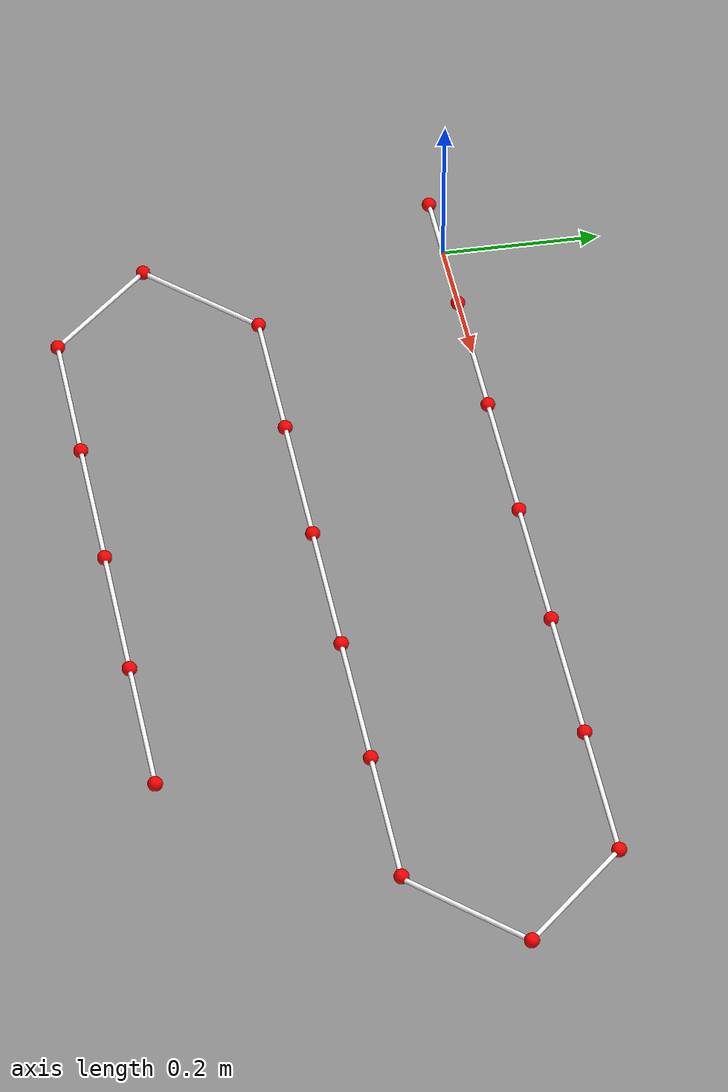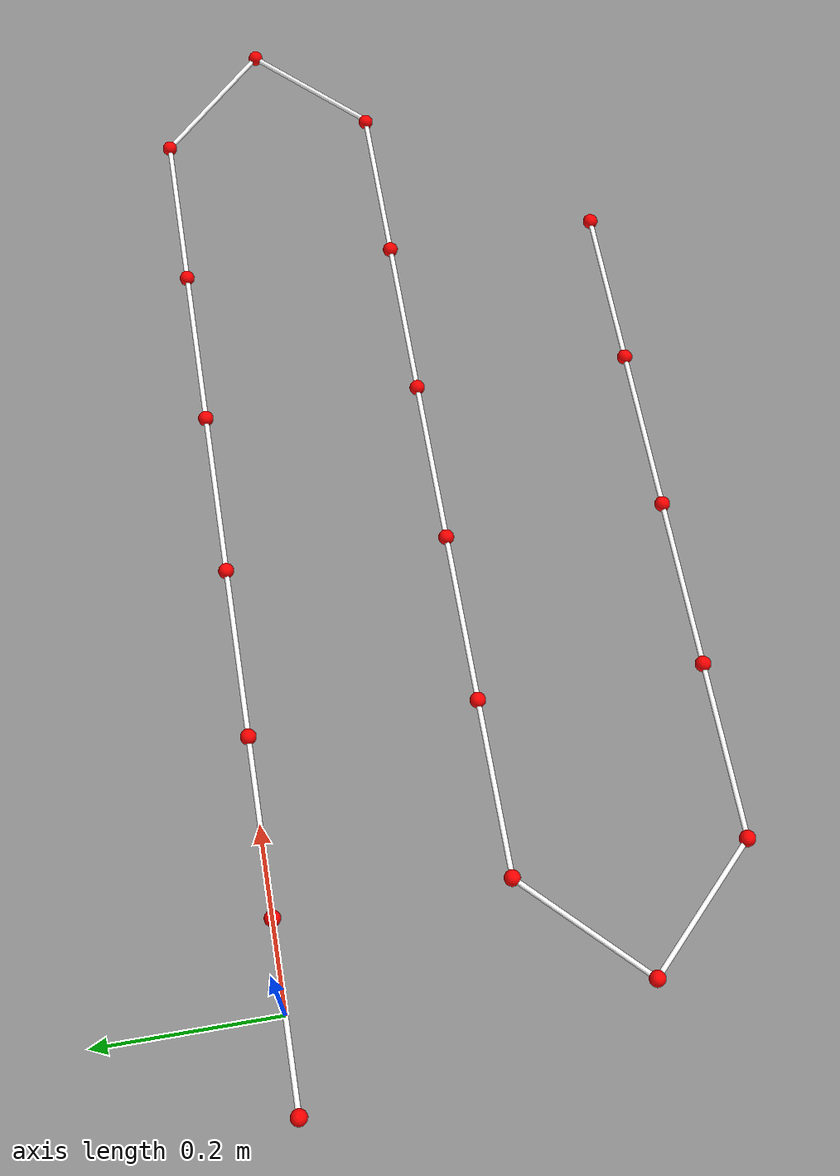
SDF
<?xml version="1.0"?>
<!--
  Tether dimension and mass based on 6mm dyneema rope
  - radius: 0.003 m
  - mass per metre: 0.026 kg

-->
<sdf version="1.9">
  <model name="tether">
    <link name="link_00">
      <gravity>true</gravity>
      <pose>-0.1 0 0 0 0 0</pose>
      <inertial>
        <mass>0.0052</mass>
        <pose>0.1 0 0 0 0 0</pose>
        <inertia>
          <ixx>2.34E-08</ixx>
          <ixy>0</ixy>
          <ixz>0</ixz>
          <iyy>1.7345E-05</iyy>
          <iyz>0</iyz>
          <izz>1.7345E-05</izz>
        </inertia>
      </inertial>
      <visual name="visual">
        <pose>0.1 0 0 0 1.570790 0</pose>
        <geometry>
          <cylinder>
            <length>0.2</length>
            <radius>0.003</radius>
          </cylinder>
        </geometry>
        <material>
          <ambient>1 1 1</ambient>
          <diffuse>1 1 1</diffuse>
          <specular>0.01 0.01 0.01 1.0</specular>
        </material>
      </visual>
      <visual name="sphere">
        <geometry>
          <sphere>
            <radius>0.009</radius>
          </sphere>
        </geometry>
        <material>
          <ambient>1 0 0</ambient>
          <diffuse>1 0 0</diffuse>
          <specular>0.01 0.01 0.01 1.0</specular>
        </material>
      </visual>
    </link>
    <link name="link_01">
      <gravity>true</gravity>
      <pose>0.1 0 0 0 0 0</pose>
      <inertial>
        <mass>0.0052</mass>
        <pose>0.1 0 0 0 0 0</pose>
        <inertia>
          <ixx>2.34E-08</ixx>
          <ixy>0</ixy>
          <ixz>0</ixz>
          <iyy>1.7345E-05</iyy>
          <iyz>0</iyz>
          <izz>1.7345E-05</izz>
        </inertia>
      </inertial>
      <collision name="collision">
        <pose>0.1 0 0 0 1.570790 0</pose>
        <geometry>
          <cylinder>
            <length>0.2</length>
            <radius>0.003</radius>
          </cylinder>
        </geometry>
      </collision>
      <visual name="visual">
        <pose>0.1 0 0 0 1.570790 0</pose>
        <geometry>
          <cylinder>
            <length>0.2</length>
            <radius>0.003</radius>
          </cylinder>
        </geometry>
        <material>
          <ambient>1 1 1</ambient>
          <diffuse>1 1 1</diffuse>
          <specular>0.01 0.01 0.01 1.0</specular>
        </material>
      </visual>
      <visual name="sphere">
        <geometry>
          <sphere>
            <radius>0.009</radius>
          </sphere>
        </geometry>
        <material>
          <ambient>1 0 0</ambient>
          <diffuse>1 0 0</diffuse>
          <specular>0.01 0.01 0.01 1.0</specular>
        </material>
      </visual>
    </link>
    <link name="link_02">
      <gravity>true</gravity>
      <pose>0.3 0 0 0 0 0</pose>
      <inertial>
        <mass>0.0052</mass>
        <pose>0.1 0 0 0 0 0</pose>
        <inertia>
          <ixx>2.34E-08</ixx>
          <ixy>0</ixy>
          <ixz>0</ixz>
          <iyy>1.7345E-05</iyy>
          <iyz>0</iyz>
          <izz>1.7345E-05</izz>
        </inertia>
      </inertial>
      <collision name="collision">
        <pose>0.1 0 0 0 1.570790 0</pose>
        <geometry>
          <cylinder>
            <length>0.2</length>
            <radius>0.003</radius>
          </cylinder>
        </geometry>
      </collision>
      <visual name="visual">
        <pose>0.1 0 0 0 1.570790 0</pose>
        <geometry>
          <cylinder>
            <length>0.2</length>
            <radius>0.003</radius>
          </cylinder>
        </geometry>
        <material>
          <ambient>1 1 1</ambient>
          <diffuse>1 1 1</diffuse>
          <specular>0.01 0.01 0.01 1.0</specular>
        </material>
      </visual>
      <visual name="sphere">
        <geometry>
          <sphere>
            <radius>0.009</radius>
          </sphere>
        </geometry>
        <material>
          <ambient>1 0 0</ambient>
          <diffuse>1 0 0</diffuse>
          <specular>0.01 0.01 0.01 1.0</specular>
        </material>
      </visual>
    </link>
    <link name="link_03">
      <gravity>true</gravity>
      <pose>0.5 0 0 0 0 0</pose>
      <inertial>
        <mass>0.0052</mass>
        <pose>0.1 0 0 0 0 0</pose>
        <inertia>
          <ixx>2.34E-08</ixx>
          <ixy>0</ixy>
          <ixz>0</ixz>
          <iyy>1.7345E-05</iyy>
          <iyz>0</iyz>
          <izz>1.7345E-05</izz>
        </inertia>
      </inertial>
      <collision name="collision">
        <pose>0.1 0 0 0 1.570790 0</pose>
        <geometry>
          <cylinder>
            <length>0.2</length>
            <radius>0.003</radius>
          </cylinder>
        </geometry>
      </collision>
      <visual name="visual">
        <pose>0.1 0 0 0 1.570790 0</pose>
        <geometry>
          <cylinder>
            <length>0.2</length>
            <radius>0.003</radius>
          </cylinder>
        </geometry>
        <material>
          <ambient>1 1 1</ambient>
          <diffuse>1 1 1</diffuse>
          <specular>0.01 0.01 0.01 1.0</specular>
        </material>
      </visual>
      <visual name="sphere">
        <geometry>
          <sphere>
            <radius>0.009</radius>
          </sphere>
        </geometry>
        <material>
          <ambient>1 0 0</ambient>
          <diffuse>1 0 0</diffuse>
          <specular>0.01 0.01 0.01 1.0</specular>
        </material>
      </visual>
    </link>
    <link name="link_04">
      <gravity>true</gravity>
      <pose>0.7 0 0 0 0 0</pose>
      <inertial>
        <mass>0.0052</mass>
        <pose>0.1 0 0 0 0 0</pose>
        <inertia>
          <ixx>2.34E-08</ixx>
          <ixy>0</ixy>
          <ixz>0</ixz>
          <iyy>1.7345E-05</iyy>
          <iyz>0</iyz>
          <izz>1.7345E-05</izz>
        </inertia>
      </inertial>
      <collision name="collision">
        <pose>0.1 0 0 0 1.570790 0</pose>
        <geometry>
          <cylinder>
            <length>0.2</length>
            <radius>0.003</radius>
          </cylinder>
        </geometry>
      </collision>
      <visual name="visual">
        <pose>0.1 0 0 0 1.570790 0</pose>
        <geometry>
          <cylinder>
            <length>0.2</length>
            <radius>0.003</radius>
          </cylinder>
        </geometry>
        <material>
          <ambient>1 1 1</ambient>
          <diffuse>1 1 1</diffuse>
          <specular>0.01 0.01 0.01 1.0</specular>
        </material>
      </visual>
      <visual name="sphere">
        <geometry>
          <sphere>
            <radius>0.009</radius>
          </sphere>
        </geometry>
        <material>
          <ambient>1 0 0</ambient>
          <diffuse>1 0 0</diffuse>
          <specular>0.01 0.01 0.01 1.0</specular>
        </material>
      </visual>
    </link>
    <link name="link_05">
      <gravity>true</gravity>
      <pose>0.9 0 0 0 0 0</pose>
      <inertial>
        <mass>0.0052</mass>
        <pose>0.1 0 0 0 0 0</pose>
        <inertia>
          <ixx>2.34E-08</ixx>
          <ixy>0</ixy>
          <ixz>0</ixz>
          <iyy>1.7345E-05</iyy>
          <iyz>0</iyz>
          <izz>1.7345E-05</izz>
        </inertia>
      </inertial>
      <collision name="collision">
        <pose>0.1 0 0 0 1.570790 0</pose>
        <geometry>
          <cylinder>
            <length>0.2</length>
            <radius>0.003</radius>
          </cylinder>
        </geometry>
      </collision>
      <visual name="visual">
        <pose>0.1 0 0 0 1.570790 0</pose>
        <geometry>
          <cylinder>
            <length>0.2</length>
            <radius>0.003</radius>
          </cylinder>
        </geometry>
        <material>
          <ambient>1 1 1</ambient>
          <diffuse>1 1 1</diffuse>
          <specular>0.01 0.01 0.01 1.0</specular>
        </material>
      </visual>
      <visual name="sphere">
        <geometry>
          <sphere>
            <radius>0.009</radius>
          </sphere>
        </geometry>
        <material>
          <ambient>1 0 0</ambient>
          <diffuse>1 0 0</diffuse>
          <specular>0.01 0.01 0.01 1.0</specular>
        </material>
      </visual>
    </link>
    <link name="link_06">
      <gravity>true</gravity>
      <pose>1.1 0 0 0 0 -.785</pose>
      <inertial>
        <mass>0.00455</mass>
        <pose>0.0875 0 0 0 0 0</pose>
        <inertia>
          <ixx>2.0475E-08</ixx>
          <ixy>0</ixy>
          <ixz>0</ixz>
          <iyy>1.16222E-05</iyy>
          <iyz>0</iyz>
          <izz>1.16222E-05</izz>
        </inertia>
      </inertial>
      <collision name="collision">
        <pose>0.0875 0 0 0 1.570790 0</pose>
        <geometry>
          <cylinder>
            <length>0.175</length>
            <radius>0.003</radius>
          </cylinder>
        </geometry>
      </collision>
      <visual name="visual">
        <pose>0.0875 0 0 0 1.570790 0</pose>
        <geometry>
          <cylinder>
            <length>0.175</length>
            <radius>0.003</radius>
          </cylinder>
        </geometry>
        <material>
          <ambient>1 1 1</ambient>
          <diffuse>1 1 1</diffuse>
          <specular>0.01 0.01 0.01 1.0</specular>
        </material>
      </visual>
      <visual name="sphere">
        <geometry>
          <sphere>
            <radius>0.009</radius>
          </sphere>
        </geometry>
        <material>
          <ambient>1 0 0</ambient>
          <diffuse>1 0 0</diffuse>
          <specular>0.01 0.01 0.01 1.0</specular>
        </material>
      </visual>
    </link>
    <link name="link_07">
      <gravity>true</gravity>
      <pose>1.227 -.127 0 0 0 -2.3415</pose>
      <inertial>
        <mass>0.00455</mass>
        <pose>0.0875 0 0 0 0 0</pose>
        <inertia>
          <ixx>2.0475E-08</ixx>
          <ixy>0</ixy>
          <ixz>0</ixz>
          <iyy>1.16222E-05</iyy>
          <iyz>0</iyz>
          <izz>1.16222E-05</izz>
        </inertia>
      </inertial>
      <collision name="collision">
        <pose>0.0875 0 0 0 1.570790 0</pose>
        <geometry>
          <cylinder>
            <length>0.175</length>
            <radius>0.003</radius>
          </cylinder>
        </geometry>
      </collision>
      <visual name="visual">
        <pose>0.0875 0 0 0 1.570790 0</pose>
        <geometry>
          <cylinder>
            <length>0.175</length>
            <radius>0.003</radius>
          </cylinder>
        </geometry>
        <material>
          <ambient>1 1 1</ambient>
          <diffuse>1 1 1</diffuse>
          <specular>0.01 0.01 0.01 1.0</specular>
        </material>
      </visual>
      <visual name="sphere">
        <geometry>
          <sphere>
            <radius>0.009</radius>
          </sphere>
        </geometry>
        <material>
          <ambient>1 0 0</ambient>
          <diffuse>1 0 0</diffuse>
          <specular>0.01 0.01 0.01 1.0</specular>
        </material>
      </visual>
    </link>
    <link name="link_08">
      <gravity>true</gravity>
      <pose>1.1 -.254 0 0 0 -3.1415</pose>
      <inertial>
        <mass>0.0052</mass>
        <pose>0.1 0 0 0 0 0</pose>
        <inertia>
          <ixx>2.34E-08</ixx>
          <ixy>0</ixy>
          <ixz>0</ixz>
          <iyy>1.7345E-05</iyy>
          <iyz>0</iyz>
          <izz>1.7345E-05</izz>
        </inertia>
      </inertial>
      <collision name="collision">
        <pose>0.1 0 0 0 1.570790 0</pose>
        <geometry>
          <cylinder>
            <length>0.2</length>
            <radius>0.003</radius>
          </cylinder>
        </geometry>
      </collision>
      <visual name="visual">
        <pose>0.1 0 0 0 1.570790 0</pose>
        <geometry>
          <cylinder>
            <length>0.2</length>
            <radius>0.003</radius>
          </cylinder>
        </geometry>
        <material>
          <ambient>1 1 1</ambient>
          <diffuse>1 1 1</diffuse>
          <specular>0.01 0.01 0.01 1.0</specular>
        </material>
      </visual>
      <visual name="sphere">
        <geometry>
          <sphere>
            <radius>0.009</radius>
          </sphere>
        </geometry>
        <material>
          <ambient>1 0 0</ambient>
          <diffuse>1 0 0</diffuse>
          <specular>0.01 0.01 0.01 1.0</specular>
        </material>
      </visual>
    </link>
    <link name="link_09">
      <gravity>true</gravity>
      <pose>0.9 -.254 0 0 0 -3.1415</pose>
      <inertial>
        <mass>0.0052</mass>
        <pose>0.1 0 0 0 0 0</pose>
        <inertia>
          <ixx>2.34E-08</ixx>
          <ixy>0</ixy>
          <ixz>0</ixz>
          <iyy>1.7345E-05</iyy>
          <iyz>0</iyz>
          <izz>1.7345E-05</izz>
        </inertia>
      </inertial>
      <collision name="collision">
        <pose>0.1 0 0 0 1.570790 0</pose>
        <geometry>
          <cylinder>
            <length>0.2</length>
            <radius>0.003</radius>
          </cylinder>
        </geometry>
      </collision>
      <visual name="visual">
        <pose>0.1 0 0 0 1.570790 0</pose>
        <geometry>
          <cylinder>
            <length>0.2</length>
            <radius>0.003</radius>
          </cylinder>
        </geometry>
        <material>
          <ambient>1 1 1</ambient>
          <diffuse>1 1 1</diffuse>
          <specular>0.01 0.01 0.01 1.0</specular>
        </material>
      </visual>
      <visual name="sphere">
        <geometry>
          <sphere>
            <radius>0.009</radius>
          </sphere>
        </geometry>
        <material>
          <ambient>1 0 0</ambient>
          <diffuse>1 0 0</diffuse>
          <specular>0.01 0.01 0.01 1.0</specular>
        </material>
      </visual>
    </link>
    <link name="link_10">
      <gravity>true</gravity>
      <pose>0.7 -.254 0 0 0 -3.1415</pose>
      <inertial>
        <mass>0.0052</mass>
        <pose>0.1 0 0 0 0 0</pose>
        <inertia>
          <ixx>2.34E-08</ixx>
          <ixy>0</ixy>
          <ixz>0</ixz>
          <iyy>1.7345E-05</iyy>
          <iyz>0</iyz>
          <izz>1.7345E-05</izz>
        </inertia>
      </inertial>
      <collision name="collision">
        <pose>0.1 0 0 0 1.570790 0</pose>
        <geometry>
          <cylinder>
            <length>0.2</length>
            <radius>0.003</radius>
          </cylinder>
        </geometry>
      </collision>
      <visual name="visual">
        <pose>0.1 0 0 0 1.570790 0</pose>
        <geometry>
          <cylinder>
            <length>0.2</length>
            <radius>0.003</radius>
          </cylinder>
        </geometry>
        <material>
          <ambient>1 1 1</ambient>
          <diffuse>1 1 1</diffuse>
          <specular>0.01 0.01 0.01 1.0</specular>
        </material>
      </visual>
      <visual name="sphere">
        <geometry>
          <sphere>
            <radius>0.009</radius>
          </sphere>
        </geometry>
        <material>
          <ambient>1 0 0</ambient>
          <diffuse>1 0 0</diffuse>
          <specular>0.01 0.01 0.01 1.0</specular>
        </material>
      </visual>
    </link>
    <link name="link_11">
      <gravity>true</gravity>
      <pose>0.5 -.254 0 0 0 -3.1415</pose>
      <inertial>
        <mass>0.0052</mass>
        <pose>0.1 0 0 0 0 0</pose>
        <inertia>
          <ixx>2.34E-08</ixx>
          <ixy>0</ixy>
          <ixz>0</ixz>
          <iyy>1.7345E-05</iyy>
          <iyz>0</iyz>
          <izz>1.7345E-05</izz>
        </inertia>
      </inertial>
      <collision name="collision">
        <pose>0.1 0 0 0 1.570790 0</pose>
        <geometry>
          <cylinder>
            <length>0.2</length>
            <radius>0.003</radius>
          </cylinder>
        </geometry>
      </collision>
      <visual name="visual">
        <pose>0.1 0 0 0 1.570790 0</pose>
        <geometry>
          <cylinder>
            <length>0.2</length>
            <radius>0.003</radius>
          </cylinder>
        </geometry>
        <material>
          <ambient>1 1 1</ambient>
          <diffuse>1 1 1</diffuse>
          <specular>0.01 0.01 0.01 1.0</specular>
        </material>
      </visual>
      <visual name="sphere">
        <geometry>
          <sphere>
            <radius>0.009</radius>
          </sphere>
        </geometry>
        <material>
          <ambient>1 0 0</ambient>
          <diffuse>1 0 0</diffuse>
          <specular>0.01 0.01 0.01 1.0</specular>
        </material>
      </visual>
    </link>
    <link name="link_12">
      <gravity>true</gravity>
      <pose>0.3 -.254 0 0 0 -3.1415</pose>
      <inertial>
        <mass>0.0052</mass>
        <pose>0.1 0 0 0 0 0</pose>
        <inertia>
          <ixx>2.34E-08</ixx>
          <ixy>0</ixy>
          <ixz>0</ixz>
          <iyy>1.7345E-05</iyy>
          <iyz>0</iyz>
          <izz>1.7345E-05</izz>
        </inertia>
      </inertial>
      <collision name="collision">
        <pose>0.1 0 0 0 1.570790 0</pose>
        <geometry>
          <cylinder>
            <length>0.2</length>
            <radius>0.003</radius>
          </cylinder>
        </geometry>
      </collision>
      <visual name="visual">
        <pose>0.1 0 0 0 1.570790 0</pose>
        <geometry>
          <cylinder>
            <length>0.2</length>
            <radius>0.003</radius>
          </cylinder>
        </geometry>
        <material>
          <ambient>1 1 1</ambient>
          <diffuse>1 1 1</diffuse>
          <specular>0.01 0.01 0.01 1.0</specular>
        </material>
      </visual>
      <visual name="sphere">
        <geometry>
          <sphere>
            <radius>0.009</radius>
          </sphere>
        </geometry>
        <material>
          <ambient>1 0 0</ambient>
          <diffuse>1 0 0</diffuse>
          <specular>0.01 0.01 0.01 1.0</specular>
        </material>
      </visual>
    </link>
    <link name="link_13">
      <gravity>true</gravity>
      <pose>0.1 -.254 0 0 0 -2.356</pose>
      <inertial>
        <mass>0.00455</mass>
        <pose>0.0875 0 0 0 0 0</pose>
        <inertia>
          <ixx>2.0475E-08</ixx>
          <ixy>0</ixy>
          <ixz>0</ixz>
          <iyy>1.16222E-05</iyy>
          <iyz>0</iyz>
          <izz>1.16222E-05</izz>
        </inertia>
      </inertial>
      <collision name="collision">
        <pose>0.0875 0 0 0 1.570790 0</pose>
        <geometry>
          <cylinder>
            <length>0.175</length>
            <radius>0.003</radius>
          </cylinder>
        </geometry>
      </collision>
      <visual name="visual">
        <pose>0.0875 0 0 0 1.570790 0</pose>
        <geometry>
          <cylinder>
            <length>0.175</length>
            <radius>0.003</radius>
          </cylinder>
        </geometry>
        <material>
          <ambient>1 1 1</ambient>
          <diffuse>1 1 1</diffuse>
          <specular>0.01 0.01 0.01 1.0</specular>
        </material>
      </visual>
      <visual name="sphere">
        <geometry>
          <sphere>
            <radius>0.009</radius>
          </sphere>
        </geometry>
        <material>
          <ambient>1 0 0</ambient>
          <diffuse>1 0 0</diffuse>
          <specular>0.01 0.01 0.01 1.0</specular>
        </material>
      </visual>
    </link>
    <link name="link_14">
      <gravity>true</gravity>
      <pose>-0.027 -.381 0 0 0 -.785</pose>
      <inertial>
        <mass>0.00455</mass>
        <pose>0.0875 0 0 0 0 0</pose>
        <inertia>
          <ixx>2.0475E-08</ixx>
          <ixy>0</ixy>
          <ixz>0</ixz>
          <iyy>1.16222E-05</iyy>
          <iyz>0</iyz>
          <izz>1.16222E-05</izz>
        </inertia>
      </inertial>
      <collision name="collision">
        <pose>0.0875 0 0 0 1.570790 0</pose>
        <geometry>
          <cylinder>
            <length>0.175</length>
            <radius>0.003</radius>
          </cylinder>
        </geometry>
      </collision>
      <visual name="visual">
        <pose>0.0875 0 0 0 1.570790 0</pose>
        <geometry>
          <cylinder>
            <length>0.175</length>
            <radius>0.003</radius>
          </cylinder>
        </geometry>
        <material>
          <ambient>1 1 1</ambient>
          <diffuse>1 1 1</diffuse>
          <specular>0.01 0.01 0.01 1.0</specular>
        </material>
      </visual>
      <visual name="sphere">
        <geometry>
          <sphere>
            <radius>0.009</radius>
          </sphere>
        </geometry>
        <material>
          <ambient>1 0 0</ambient>
          <diffuse>1 0 0</diffuse>
          <specular>0.01 0.01 0.01 1.0</specular>
        </material>
      </visual>
    </link>
    <link name="link_15">
      <gravity>true</gravity>
      <pose>0.1 -.508 0 0 0 0</pose>
      <inertial>
        <mass>0.0052</mass>
        <pose>0.1 0 0 0 0 0</pose>
        <inertia>
          <ixx>2.34E-08</ixx>
          <ixy>0</ixy>
          <ixz>0</ixz>
          <iyy>1.7345E-05</iyy>
          <iyz>0</iyz>
          <izz>1.7345E-05</izz>
        </inertia>
      </inertial>
      <collision name="collision">
        <pose>0.1 0 0 0 1.570790 0</pose>
        <geometry>
          <cylinder>
            <length>0.2</length>
            <radius>0.003</radius>
          </cylinder>
        </geometry>
      </collision>
      <visual name="visual">
        <pose>0.1 0 0 0 1.570790 0</pose>
        <geometry>
          <cylinder>
            <length>0.2</length>
            <radius>0.003</radius>
          </cylinder>
        </geometry>
        <material>
          <ambient>1 1 1</ambient>
          <diffuse>1 1 1</diffuse>
          <specular>0.01 0.01 0.01 1.0</specular>
        </material>
      </visual>
      <visual name="sphere">
        <geometry>
          <sphere>
            <radius>0.009</radius>
          </sphere>
        </geometry>
        <material>
          <ambient>1 0 0</ambient>
          <diffuse>1 0 0</diffuse>
          <specular>0.01 0.01 0.01 1.0</specular>
        </material>
      </visual>
    </link>
    <link name="link_16">
      <gravity>true</gravity>
      <pose>0.3 -.508 0 0 0 0</pose>
      <inertial>
        <mass>0.0052</mass>
        <pose>0.1 0 0 0 0 0</pose>
        <inertia>
          <ixx>2.34E-08</ixx>
          <ixy>0</ixy>
          <ixz>0</ixz>
          <iyy>1.7345E-05</iyy>
          <iyz>0</iyz>
          <izz>1.7345E-05</izz>
        </inertia>
      </inertial>
      <collision name="collision">
        <pose>0.1 0 0 0 1.570790 0</pose>
        <geometry>
          <cylinder>
            <length>0.2</length>
            <radius>0.003</radius>
          </cylinder>
        </geometry>
      </collision>
      <visual name="visual">
        <pose>0.1 0 0 0 1.570790 0</pose>
        <geometry>
          <cylinder>
            <length>0.2</length>
            <radius>0.003</radius>
          </cylinder>
        </geometry>
        <material>
          <ambient>1 1 1</ambient>
          <diffuse>1 1 1</diffuse>
          <specular>0.01 0.01 0.01 1.0</specular>
        </material>
      </visual>
      <visual name="sphere">
        <geometry>
          <sphere>
            <radius>0.009</radius>
          </sphere>
        </geometry>
        <material>
          <ambient>1 0 0</ambient>
          <diffuse>1 0 0</diffuse>
          <specular>0.01 0.01 0.01 1.0</specular>
        </material>
      </visual>
    </link>
    <link name="link_17">
      <gravity>true</gravity>
      <pose>0.5 -.508 0 0 0 0</pose>
      <inertial>
        <mass>0.0052</mass>
        <pose>0.1 0 0 0 0 0</pose>
        <inertia>
          <ixx>2.34E-08</ixx>
          <ixy>0</ixy>
          <ixz>0</ixz>
          <iyy>1.7345E-05</iyy>
          <iyz>0</iyz>
          <izz>1.7345E-05</izz>
        </inertia>
      </inertial>
      <collision name="collision">
        <pose>0.1 0 0 0 1.570790 0</pose>
        <geometry>
          <cylinder>
            <length>0.2</length>
            <radius>0.003</radius>
          </cylinder>
        </geometry>
      </collision>
      <visual name="visual">
        <pose>0.1 0 0 0 1.570790 0</pose>
        <geometry>
          <cylinder>
            <length>0.2</length>
            <radius>0.003</radius>
          </cylinder>
        </geometry>
        <material>
          <ambient>1 1 1</ambient>
          <diffuse>1 1 1</diffuse>
          <specular>0.01 0.01 0.01 1.0</specular>
        </material>
      </visual>
      <visual name="sphere">
        <geometry>
          <sphere>
            <radius>0.009</radius>
          </sphere>
        </geometry>
        <material>
          <ambient>1 0 0</ambient>
          <diffuse>1 0 0</diffuse>
          <specular>0.01 0.01 0.01 1.0</specular>
        </material>
      </visual>
    </link>
    <link name="link_18">
      <gravity>true</gravity>
      <pose>0.7 -.508 0 0 0 0</pose>
      <inertial>
        <mass>0.0052</mass>
        <pose>0.1 0 0 0 0 0</pose>
        <inertia>
          <ixx>2.34E-08</ixx>
          <ixy>0</ixy>
          <ixz>0</ixz>
          <iyy>1.7345E-05</iyy>
          <iyz>0</iyz>
          <izz>1.7345E-05</izz>
        </inertia>
      </inertial>
      <collision name="collision">
        <pose>0.1 0 0 0 1.570790 0</pose>
        <geometry>
          <cylinder>
            <length>0.2</length>
            <radius>0.003</radius>
          </cylinder>
        </geometry>
      </collision>
      <visual name="visual">
        <pose>0.1 0 0 0 1.570790 0</pose>
        <geometry>
          <cylinder>
            <length>0.2</length>
            <radius>0.003</radius>
          </cylinder>
        </geometry>
        <material>
          <ambient>1 1 1</ambient>
          <diffuse>1 1 1</diffuse>
          <specular>0.01 0.01 0.01 1.0</specular>
        </material>
      </visual>
      <visual name="sphere">
        <geometry>
          <sphere>
            <radius>0.009</radius>
          </sphere>
        </geometry>
        <material>
          <ambient>1 0 0</ambient>
          <diffuse>1 0 0</diffuse>
          <specular>0.01 0.01 0.01 1.0</specular>
        </material>
      </visual>
    </link>
    <link name="link_19">
      <gravity>true</gravity>
      <pose>0.9 -.508 0 0 0 0</pose>
      <inertial>
        <mass>0.0052</mass>
        <pose>0.1 0 0 0 0 0</pose>
        <inertia>
          <ixx>2.34E-08</ixx>
          <ixy>0</ixy>
          <ixz>0</ixz>
          <iyy>1.7345E-05</iyy>
          <iyz>0</iyz>
          <izz>1.7345E-05</izz>
        </inertia>
      </inertial>
      <collision name="collision">
        <pose>0.1 0 0 0 1.570790 0</pose>
        <geometry>
          <cylinder>
            <length>0.2</length>
            <radius>0.003</radius>
          </cylinder>
        </geometry>
      </collision>
      <visual name="sphere">
        <geometry>
          <sphere>
            <radius>0.009</radius>
          </sphere>
        </geometry>
        <material>
          <ambient>1 0 0</ambient>
          <diffuse>1 0 0</diffuse>
          <specular>0.01 0.01 0.01 1.0</specular>
        </material>
      </visual>
    </link>
    <joint name="joint_01" type="universal">
      <child>link_01</child>
      <parent>link_00</parent>
      <axis>
        <xyz>0 1 0</xyz>
        <limit>
          <lower>-1.57</lower>
          <upper>1.57</upper>
        </limit>
        <dynamics>
          <damping>0.004</damping>
        </dynamics>
      </axis>
      <axis2>
        <xyz>0 0 1</xyz>
        <limit>
          <lower>-1.57</lower>
          <upper>1.57</upper>
        </limit>
        <dynamics>
          <damping>0.004</damping>
        </dynamics>
      </axis2>
    </joint>
    <joint name="joint_02" type="universal">
      <child>link_02</child>
      <parent>link_01</parent>
      <axis>
        <xyz>0 1 0</xyz>
        <limit>
          <lower>-1.57</lower>
          <upper>1.57</upper>
        </limit>
        <dynamics>
          <damping>0.004</damping>
        </dynamics>
      </axis>
      <axis2>
        <xyz>0 0 1</xyz>
        <limit>
          <lower>-1.57</lower>
          <upper>1.57</upper>
        </limit>
        <dynamics>
          <damping>0.004</damping>
        </dynamics>
      </axis2>
    </joint>
    <joint name="joint_03" type="universal">
      <child>link_03</child>
      <parent>link_02</parent>
      <axis>
        <xyz>0 1 0</xyz>
        <limit>
          <lower>-1.57</lower>
          <upper>1.57</upper>
        </limit>
        <dynamics>
          <damping>0.004</damping>
        </dynamics>
      </axis>
      <axis2>
        <xyz>0 0 1</xyz>
        <limit>
          <lower>-1.57</lower>
          <upper>1.57</upper>
        </limit>
        <dynamics>
          <damping>0.004</damping>
        </dynamics>
      </axis2>
    </joint>
    <joint name="joint_04" type="universal">
      <child>link_04</child>
      <parent>link_03</parent>
      <axis>
        <xyz>0 1 0</xyz>
        <limit>
          <lower>-1.57</lower>
          <upper>1.57</upper>
        </limit>
        <dynamics>
          <damping>0.004</damping>
        </dynamics>
      </axis>
      <axis2>
        <xyz>0 0 1</xyz>
        <limit>
          <lower>-1.57</lower>
          <upper>1.57</upper>
        </limit>
        <dynamics>
          <damping>0.004</damping>
        </dynamics>
      </axis2>
    </joint>
    <joint name="joint_05" type="universal">
      <child>link_05</child>
      <parent>link_04</parent>
      <axis>
        <xyz>0 1 0</xyz>
        <limit>
          <lower>-1.57</lower>
          <upper>1.57</upper>
        </limit>
        <dynamics>
          <damping>0.004</damping>
        </dynamics>
      </axis>
      <axis2>
        <xyz>0 0 1</xyz>
        <limit>
          <lower>-1.57</lower>
          <upper>1.57</upper>
        </limit>
        <dynamics>
          <damping>0.004</damping>
        </dynamics>
      </axis2>
    </joint>
    <joint name="joint_06" type="universal">
      <child>link_06</child>
      <parent>link_05</parent>
      <axis>
        <xyz>0 0 1</xyz>
        <limit>
          <lower>-0.72</lower>
          <upper>2.35</upper>
        </limit>
        <dynamics>
          <damping>0.004</damping>
        </dynamics>
      </axis>
      <axis2>
        <xyz>1 1 0</xyz>
        <limit>
          <lower>-1.57</lower>
          <upper>1.57</upper>
        </limit>
        <dynamics>
          <damping>0.004</damping>
        </dynamics>
      </axis2>
    </joint>
    <joint name="joint_07" type="universal">
      <child>link_07</child>
      <parent>link_06</parent>
      <axis>
        <xyz>0 0 1</xyz>
        <limit>
          <lower>-0.0</lower>
          <upper>3.00</upper>
        </limit>
        <dynamics>
          <damping>0.004</damping>
        </dynamics>
      </axis>
      <axis2>
        <xyz>-1 1 0</xyz>
        <limit>
          <lower>-1.57</lower>
          <upper>1.57</upper>
        </limit>
        <dynamics>
          <damping>0.004</damping>
        </dynamics>
      </axis2>
    </joint>
    <joint name="joint_08" type="universal">
      <child>link_08</child>
      <parent>link_07</parent>
      <axis>
        <xyz>0 1 0</xyz>
        <limit>
          <lower>-1.57</lower>
          <upper>1.57</upper>
        </limit>
        <dynamics>
          <damping>0.004</damping>
        </dynamics>
      </axis>
      <axis2>
        <xyz>0 0 1</xyz>
        <limit>
          <lower>-0.72</lower>
          <upper>2.35</upper>
        </limit>
        <dynamics>
          <damping>0.004</damping>
        </dynamics>
      </axis2>
    </joint>
    <joint name="joint_09" type="universal">
      <child>link_09</child>
      <parent>link_08</parent>
      <axis>
        <xyz>0 1 0</xyz>
        <limit>
          <lower>-1.57</lower>
          <upper>1.57</upper>
        </limit>
        <dynamics>
          <damping>0.004</damping>
        </dynamics>
      </axis>
      <axis2>
        <xyz>0 0 1</xyz>
        <limit>
          <lower>-1.57</lower>
          <upper>1.57</upper>
        </limit>
        <dynamics>
          <damping>0.004</damping>
        </dynamics>
      </axis2>
    </joint>
    <joint name="joint_10" type="universal">
      <child>link_10</child>
      <parent>link_09</parent>
      <axis>
        <xyz>0 1 0</xyz>
        <limit>
          <lower>-1.57</lower>
          <upper>1.57</upper>
        </limit>
        <dynamics>
          <damping>0.004</damping>
        </dynamics>
      </axis>
      <axis2>
        <xyz>0 0 1</xyz>
        <limit>
          <lower>-1.57</lower>
          <upper>1.57</upper>
        </limit>
        <dynamics>
          <damping>0.004</damping>
        </dynamics>
      </axis2>
    </joint>
    <joint name="joint_11" type="universal">
      <child>link_11</child>
      <parent>link_10</parent>
      <axis>
        <xyz>0 1 0</xyz>
        <limit>
          <lower>-1.57</lower>
          <upper>1.57</upper>
        </limit>
        <dynamics>
          <damping>0.004</damping>
        </dynamics>
      </axis>
      <axis2>
        <xyz>0 0 1</xyz>
        <limit>
          <lower>-1.57</lower>
          <upper>1.57</upper>
        </limit>
        <dynamics>
          <damping>0.004</damping>
        </dynamics>
      </axis2>
    </joint>
    <joint name="joint_12" type="universal">
      <child>link_12</child>
      <parent>link_11</parent>
      <axis>
        <xyz>0 1 0</xyz>
        <limit>
          <lower>-1.57</lower>
          <upper>1.57</upper>
        </limit>
        <dynamics>
          <damping>0.004</damping>
        </dynamics>
      </axis>
      <axis2>
        <xyz>0 0 1</xyz>
        <limit>
          <lower>-1.57</lower>
          <upper>1.57</upper>
        </limit>
        <dynamics>
          <damping>0.004</damping>
        </dynamics>
      </axis2>
    </joint>
    <joint name="joint_13" type="universal">
      <child>link_13</child>
      <parent>link_12</parent>
      <axis>
        <xyz>0 0 1</xyz>
        <limit>
          <lower>-2.35</lower>
          <upper>0.72</upper>
        </limit>
        <dynamics>
          <damping>0.004</damping>
        </dynamics>
      </axis>
      <axis2>
        <xyz>-1 1 0</xyz>
        <limit>
          <lower>-1.57</lower>
          <upper>1.57</upper>
        </limit>
        <dynamics>
          <damping>0.004</damping>
        </dynamics>
      </axis2>
    </joint>
    <joint name="joint_14" type="universal">
      <child>link_14</child>
      <parent>link_13</parent>
      <axis>
        <xyz>0 0 1</xyz>
        <limit>
          <lower>-3.00</lower>
          <upper>0.0</upper>
        </limit>
        <dynamics>
          <damping>0.004</damping>
        </dynamics>
      </axis>
      <axis2>
        <xyz>1 1 0</xyz>
        <limit>
          <lower>-1.57</lower>
          <upper>1.57</upper>
        </limit>
        <dynamics>
          <damping>0.004</damping>
        </dynamics>
      </axis2>
    </joint>
    <joint name="joint_15" type="universal">
      <child>link_15</child>
      <parent>link_14</parent>
      <axis>
        <xyz>0 0 1</xyz>
        <limit>
          <lower>-2.35</lower>
          <upper>0.72</upper>
        </limit>
        <dynamics>
          <damping>0.004</damping>
        </dynamics>
      </axis>
      <axis2>
        <xyz>0 1 0</xyz>
        <limit>
          <lower>-1.57</lower>
          <upper>1.57</upper>
        </limit>
        <dynamics>
          <damping>0.004</damping>
        </dynamics>
      </axis2>
    </joint>
    <joint name="joint_16" type="universal">
      <child>link_16</child>
      <parent>link_15</parent>
      <axis>
        <xyz>0 1 0</xyz>
        <limit>
          <lower>-1.57</lower>
          <upper>1.57</upper>
        </limit>
        <dynamics>
          <damping>0.004</damping>
        </dynamics>
      </axis>
      <axis2>
        <xyz>0 0 1</xyz>
        <limit>
          <lower>-1.57</lower>
          <upper>1.57</upper>
        </limit>
        <dynamics>
          <damping>0.004</damping>
        </dynamics>
      </axis2>
    </joint>
    <joint name="joint_17" type="universal">
      <child>link_17</child>
      <parent>link_16</parent>
      <axis>
        <xyz>0 1 0</xyz>
        <limit>
          <lower>-1.57</lower>
          <upper>1.57</upper>
        </limit>
        <dynamics>
          <damping>0.004</damping>
        </dynamics>
      </axis>
      <axis2>
        <xyz>0 0 1</xyz>
        <limit>
          <lower>-1.57</lower>
          <upper>1.57</upper>
        </limit>
        <dynamics>
          <damping>0.004</damping>
        </dynamics>
      </axis2>
    </joint>
    <joint name="joint_18" type="universal">
      <child>link_18</child>
      <parent>link_17</parent>
      <axis>
        <xyz>0 1 0</xyz>
        <limit>
          <lower>-1.57</lower>
          <upper>1.57</upper>
        </limit>
        <dynamics>
          <damping>0.004</damping>
        </dynamics>
      </axis>
      <axis2>
        <xyz>0 0 1</xyz>
        <limit>
          <lower>-1.57</lower>
          <upper>1.57</upper>
        </limit>
        <dynamics>
          <damping>0.004</damping>
        </dynamics>
      </axis2>
    </joint>
    <joint name="joint_19" type="universal">
      <child>link_19</child>
      <parent>link_18</parent>
      <axis>
        <xyz>0 1 0</xyz>
        <limit>
          <lower>-1.57</lower>
          <upper>1.57</upper>
        </limit>
        <dynamics>
          <damping>0.004</damping>
        </dynamics>
      </axis>
      <axis2>
        <xyz>0 0 1</xyz>
        <limit>
          <lower>-1.57</lower>
          <upper>1.57</upper>
        </limit>
        <dynamics>
          <damping>0.004</damping>
        </dynamics>
      </axis2>
    </joint>
  </model>
</sdf>
